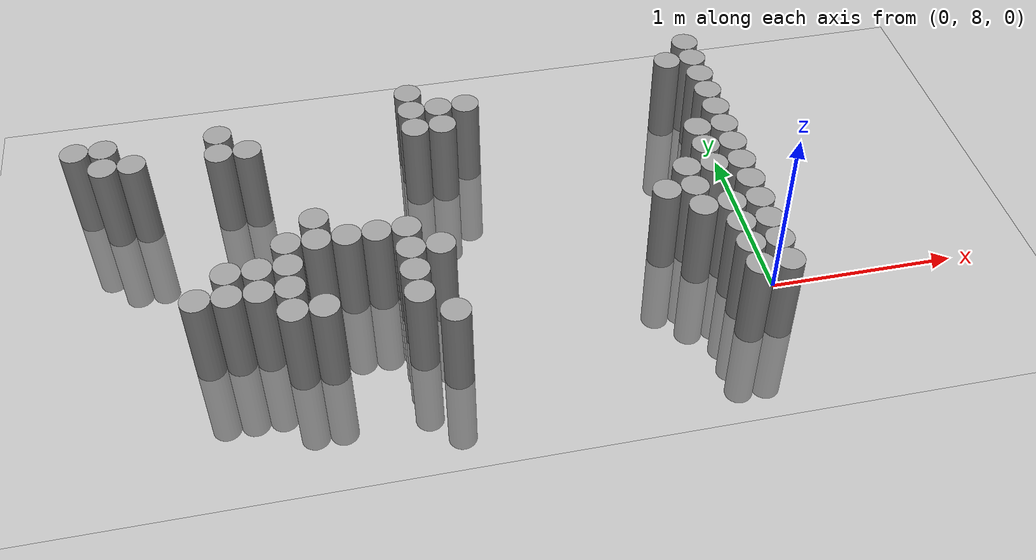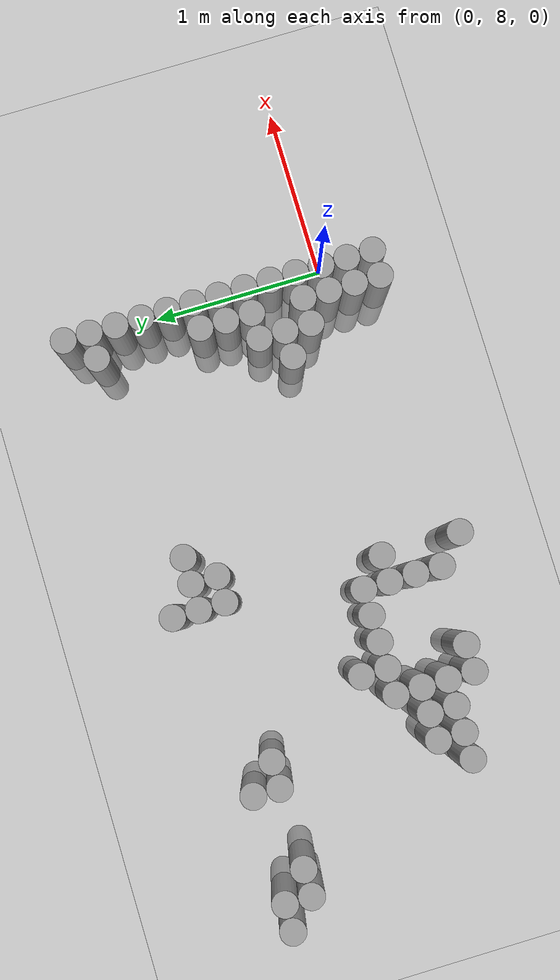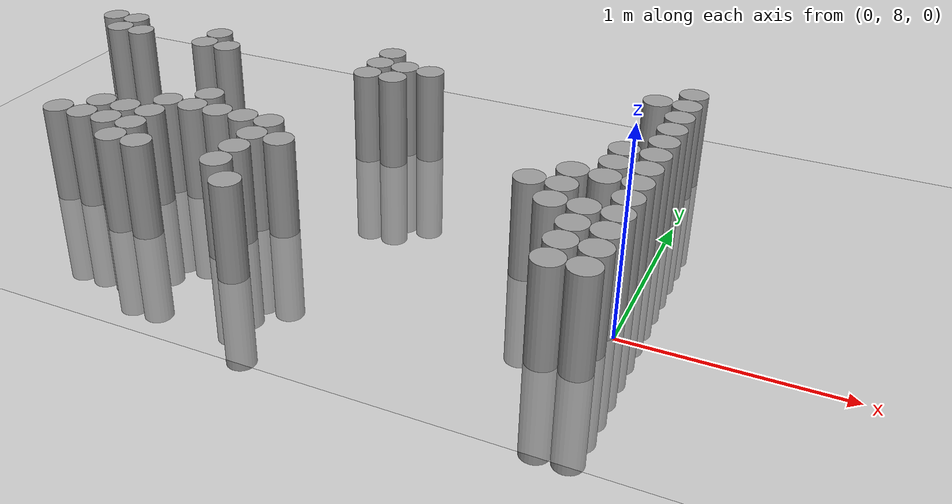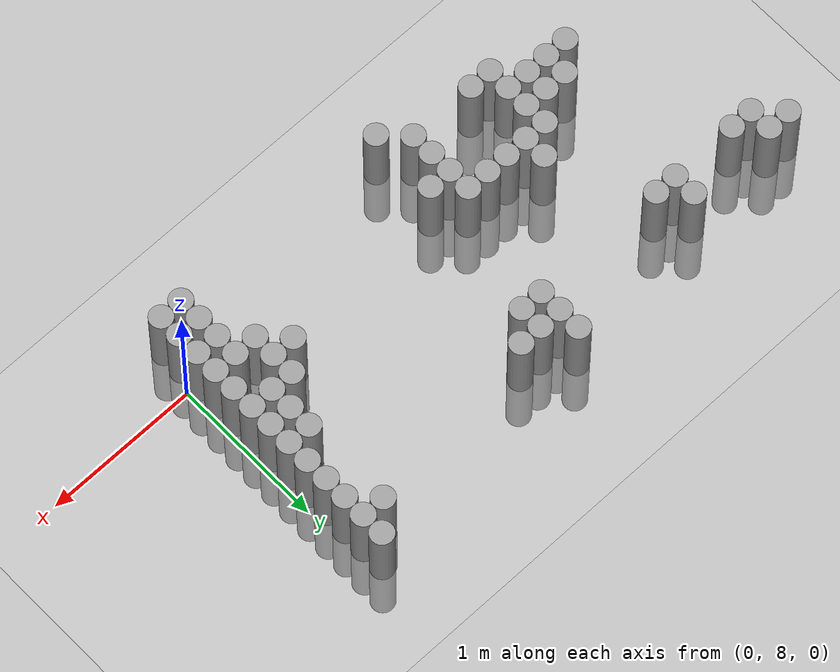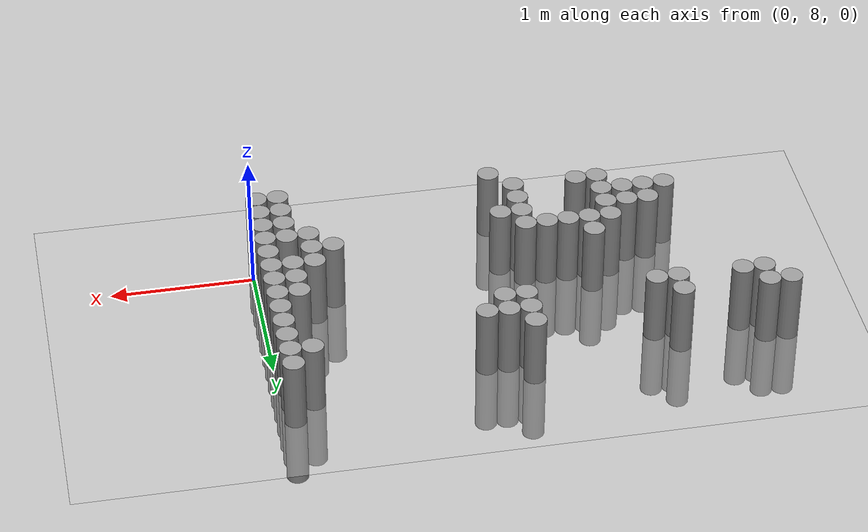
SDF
<sdf version="1.6">
 <world name="default">
  <model name="ground_plane">
   <static>1</static>
   <static>1</static>
   <link name="link">
    <collision name="collision">
     <geometry><plane><normal>0 0 1</normal><size>100 100</size></plane></geometry>
     <surface><friction><ode><mu>100</mu><mu2>50</mu2></ode></friction></surface>
    </collision>
    <visual name="visual">
     <cast_shadows>0</cast_shadows>
     <geometry><plane><normal>0 0 1</normal><size>100 100</size></plane></geometry>
     <material>
      <script><uri>file://media/materials/scripts/gazebo.material</uri><name>Gazebo/Grey</name></script>
     </material>
    </visual>
   </link>
  </model>
  <model name="unit_cylinder_165">
   <static>1</static>
   <pose>-3.525000 9.225000 0.000000 0.000000 0.000000 0.000000</pose>
   <link name="link">
    <inertial>
     <mass>1</mass>
     <inertia><ixx>0.145833</ixx><ixy>0</ixy><ixz>0</ixz><iyy>0.145833</iyy><iyz>0</iyz><izz>0.125</izz></inertia>
    </inertial>
    <collision name="collision">
     <geometry><cylinder><radius>0.075000</radius><length>1</length></cylinder></geometry>
    </collision>
    <visual name="visual">
     <geometry><cylinder><radius>0.075000</radius><length>1</length></cylinder></geometry>
     <material>
      <script><name>Gazebo/Grey</name><uri>file://media/materials/scripts/gazebo.material</uri></script>
     </material>
    </visual>
   </link>
  </model>
  <model name="unit_cylinder_166">
   <static>1</static>
   <pose>-3.375000 9.075000 0.000000 0.000000 0.000000 0.000000</pose>
   <link name="link">
    <inertial>
     <mass>1</mass>
     <inertia><ixx>0.145833</ixx><ixy>0</ixy><ixz>0</ixz><iyy>0.145833</iyy><iyz>0</iyz><izz>0.125</izz></inertia>
    </inertial>
    <collision name="collision">
     <geometry><cylinder><radius>0.075000</radius><length>1</length></cylinder></geometry>
    </collision>
    <visual name="visual">
     <geometry><cylinder><radius>0.075000</radius><length>1</length></cylinder></geometry>
     <material>
      <script><name>Gazebo/Grey</name><uri>file://media/materials/scripts/gazebo.material</uri></script>
     </material>
    </visual>
   </link>
  </model>
  <model name="unit_cylinder_167">
   <static>1</static>
   <pose>-3.375000 9.225000 0.000000 0.000000 0.000000 0.000000</pose>
   <link name="link">
    <inertial>
     <mass>1</mass>
     <inertia><ixx>0.145833</ixx><ixy>0</ixy><ixz>0</ixz><iyy>0.145833</iyy><iyz>0</iyz><izz>0.125</izz></inertia>
    </inertial>
    <collision name="collision">
     <geometry><cylinder><radius>0.075000</radius><length>1</length></cylinder></geometry>
    </collision>
    <visual name="visual">
     <geometry><cylinder><radius>0.075000</radius><length>1</length></cylinder></geometry>
     <material>
      <script><name>Gazebo/Grey</name><uri>file://media/materials/scripts/gazebo.material</uri></script>
     </material>
    </visual>
   </link>
  </model>
  <model name="unit_cylinder_168">
   <static>1</static>
   <pose>-3.225000 9.075000 0.000000 0.000000 0.000000 0.000000</pose>
   <link name="link">
    <inertial>
     <mass>1</mass>
     <inertia><ixx>0.145833</ixx><ixy>0</ixy><ixz>0</ixz><iyy>0.145833</iyy><iyz>0</iyz><izz>0.125</izz></inertia>
    </inertial>
    <collision name="collision">
     <geometry><cylinder><radius>0.075000</radius><length>1</length></cylinder></geometry>
    </collision>
    <visual name="visual">
     <geometry><cylinder><radius>0.075000</radius><length>1</length></cylinder></geometry>
     <material>
      <script><name>Gazebo/Grey</name><uri>file://media/materials/scripts/gazebo.material</uri></script>
     </material>
    </visual>
   </link>
  </model>
  <model name="unit_cylinder_172">
   <static>1</static>
   <pose>-2.925000 8.025000 0.000000 0.000000 0.000000 0.000000</pose>
   <link name="link">
    <inertial>
     <mass>1</mass>
     <inertia><ixx>0.145833</ixx><ixy>0</ixy><ixz>0</ixz><iyy>0.145833</iyy><iyz>0</iyz><izz>0.125</izz></inertia>
    </inertial>
    <collision name="collision">
     <geometry><cylinder><radius>0.075000</radius><length>1</length></cylinder></geometry>
    </collision>
    <visual name="visual">
     <geometry><cylinder><radius>0.075000</radius><length>1</length></cylinder></geometry>
     <material>
      <script><name>Gazebo/Grey</name><uri>file://media/materials/scripts/gazebo.material</uri></script>
     </material>
    </visual>
   </link>
  </model>
  <model name="unit_cylinder_175">
   <static>1</static>
   <pose>-2.775000 8.025000 0.000000 0.000000 0.000000 0.000000</pose>
   <link name="link">
    <inertial>
     <mass>1</mass>
     <inertia><ixx>0.145833</ixx><ixy>0</ixy><ixz>0</ixz><iyy>0.145833</iyy><iyz>0</iyz><izz>0.125</izz></inertia>
    </inertial>
    <collision name="collision">
     <geometry><cylinder><radius>0.075000</radius><length>1</length></cylinder></geometry>
    </collision>
    <visual name="visual">
     <geometry><cylinder><radius>0.075000</radius><length>1</length></cylinder></geometry>
     <material>
      <script><name>Gazebo/Grey</name><uri>file://media/materials/scripts/gazebo.material</uri></script>
     </material>
    </visual>
   </link>
  </model>
  <model name="unit_cylinder_176">
   <static>1</static>
   <pose>-2.775000 8.175000 0.000000 0.000000 0.000000 0.000000</pose>
   <link name="link">
    <inertial>
     <mass>1</mass>
     <inertia><ixx>0.145833</ixx><ixy>0</ixy><ixz>0</ixz><iyy>0.145833</iyy><iyz>0</iyz><izz>0.125</izz></inertia>
    </inertial>
    <collision name="collision">
     <geometry><cylinder><radius>0.075000</radius><length>1</length></cylinder></geometry>
    </collision>
    <visual name="visual">
     <geometry><cylinder><radius>0.075000</radius><length>1</length></cylinder></geometry>
     <material>
      <script><name>Gazebo/Grey</name><uri>file://media/materials/scripts/gazebo.material</uri></script>
     </material>
    </visual>
   </link>
  </model>
  <model name="unit_cylinder_177">
   <static>1</static>
   <pose>-2.775000 9.075000 0.000000 0.000000 0.000000 0.000000</pose>
   <link name="link">
    <inertial>
     <mass>1</mass>
     <inertia><ixx>0.145833</ixx><ixy>0</ixy><ixz>0</ixz><iyy>0.145833</iyy><iyz>0</iyz><izz>0.125</izz></inertia>
    </inertial>
    <collision name="collision">
     <geometry><cylinder><radius>0.075000</radius><length>1</length></cylinder></geometry>
    </collision>
    <visual name="visual">
     <geometry><cylinder><radius>0.075000</radius><length>1</length></cylinder></geometry>
     <material>
      <script><name>Gazebo/Grey</name><uri>file://media/materials/scripts/gazebo.material</uri></script>
     </material>
    </visual>
   </link>
  </model>
  <model name="unit_cylinder_178">
   <static>1</static>
   <pose>-2.775000 9.225000 0.000000 0.000000 0.000000 0.000000</pose>
   <link name="link">
    <inertial>
     <mass>1</mass>
     <inertia><ixx>0.145833</ixx><ixy>0</ixy><ixz>0</ixz><iyy>0.145833</iyy><iyz>0</iyz><izz>0.125</izz></inertia>
    </inertial>
    <collision name="collision">
     <geometry><cylinder><radius>0.075000</radius><length>1</length></cylinder></geometry>
    </collision>
    <visual name="visual">
     <geometry><cylinder><radius>0.075000</radius><length>1</length></cylinder></geometry>
     <material>
      <script><name>Gazebo/Grey</name><uri>file://media/materials/scripts/gazebo.material</uri></script>
     </material>
    </visual>
   </link>
  </model>
  <model name="unit_cylinder_180">
   <static>1</static>
   <pose>-2.625000 8.025000 0.000000 0.000000 0.000000 0.000000</pose>
   <link name="link">
    <inertial>
     <mass>1</mass>
     <inertia><ixx>0.145833</ixx><ixy>0</ixy><ixz>0</ixz><iyy>0.145833</iyy><iyz>0</iyz><izz>0.125</izz></inertia>
    </inertial>
    <collision name="collision">
     <geometry><cylinder><radius>0.075000</radius><length>1</length></cylinder></geometry>
    </collision>
    <visual name="visual">
     <geometry><cylinder><radius>0.075000</radius><length>1</length></cylinder></geometry>
     <material>
      <script><name>Gazebo/Grey</name><uri>file://media/materials/scripts/gazebo.material</uri></script>
     </material>
    </visual>
   </link>
  </model>
  <model name="unit_cylinder_181">
   <static>1</static>
   <pose>-2.625000 8.175000 0.000000 0.000000 0.000000 0.000000</pose>
   <link name="link">
    <inertial>
     <mass>1</mass>
     <inertia><ixx>0.145833</ixx><ixy>0</ixy><ixz>0</ixz><iyy>0.145833</iyy><iyz>0</iyz><izz>0.125</izz></inertia>
    </inertial>
    <collision name="collision">
     <geometry><cylinder><radius>0.075000</radius><length>1</length></cylinder></geometry>
    </collision>
    <visual name="visual">
     <geometry><cylinder><radius>0.075000</radius><length>1</length></cylinder></geometry>
     <material>
      <script><name>Gazebo/Grey</name><uri>file://media/materials/scripts/gazebo.material</uri></script>
     </material>
    </visual>
   </link>
  </model>
  <model name="unit_cylinder_182">
   <static>1</static>
   <pose>-2.625000 9.075000 0.000000 0.000000 0.000000 0.000000</pose>
   <link name="link">
    <inertial>
     <mass>1</mass>
     <inertia><ixx>0.145833</ixx><ixy>0</ixy><ixz>0</ixz><iyy>0.145833</iyy><iyz>0</iyz><izz>0.125</izz></inertia>
    </inertial>
    <collision name="collision">
     <geometry><cylinder><radius>0.075000</radius><length>1</length></cylinder></geometry>
    </collision>
    <visual name="visual">
     <geometry><cylinder><radius>0.075000</radius><length>1</length></cylinder></geometry>
     <material>
      <script><name>Gazebo/Grey</name><uri>file://media/materials/scripts/gazebo.material</uri></script>
     </material>
    </visual>
   </link>
  </model>
  <model name="unit_cylinder_185">
   <static>1</static>
   <pose>-2.475000 7.875000 0.000000 0.000000 0.000000 0.000000</pose>
   <link name="link">
    <inertial>
     <mass>1</mass>
     <inertia><ixx>0.145833</ixx><ixy>0</ixy><ixz>0</ixz><iyy>0.145833</iyy><iyz>0</iyz><izz>0.125</izz></inertia>
    </inertial>
    <collision name="collision">
     <geometry><cylinder><radius>0.075000</radius><length>1</length></cylinder></geometry>
    </collision>
    <visual name="visual">
     <geometry><cylinder><radius>0.075000</radius><length>1</length></cylinder></geometry>
     <material>
      <script><name>Gazebo/Grey</name><uri>file://media/materials/scripts/gazebo.material</uri></script>
     </material>
    </visual>
   </link>
  </model>
  <model name="unit_cylinder_186">
   <static>1</static>
   <pose>-2.475000 8.025000 0.000000 0.000000 0.000000 0.000000</pose>
   <link name="link">
    <inertial>
     <mass>1</mass>
     <inertia><ixx>0.145833</ixx><ixy>0</ixy><ixz>0</ixz><iyy>0.145833</iyy><iyz>0</iyz><izz>0.125</izz></inertia>
    </inertial>
    <collision name="collision">
     <geometry><cylinder><radius>0.075000</radius><length>1</length></cylinder></geometry>
    </collision>
    <visual name="visual">
     <geometry><cylinder><radius>0.075000</radius><length>1</length></cylinder></geometry>
     <material>
      <script><name>Gazebo/Grey</name><uri>file://media/materials/scripts/gazebo.material</uri></script>
     </material>
    </visual>
   </link>
  </model>
  <model name="unit_cylinder_187">
   <static>1</static>
   <pose>-2.475000 8.175000 0.000000 0.000000 0.000000 0.000000</pose>
   <link name="link">
    <inertial>
     <mass>1</mass>
     <inertia><ixx>0.145833</ixx><ixy>0</ixy><ixz>0</ixz><iyy>0.145833</iyy><iyz>0</iyz><izz>0.125</izz></inertia>
    </inertial>
    <collision name="collision">
     <geometry><cylinder><radius>0.075000</radius><length>1</length></cylinder></geometry>
    </collision>
    <visual name="visual">
     <geometry><cylinder><radius>0.075000</radius><length>1</length></cylinder></geometry>
     <material>
      <script><name>Gazebo/Grey</name><uri>file://media/materials/scripts/gazebo.material</uri></script>
     </material>
    </visual>
   </link>
  </model>
  <model name="unit_cylinder_188">
   <static>1</static>
   <pose>-2.475000 8.325000 0.000000 0.000000 0.000000 0.000000</pose>
   <link name="link">
    <inertial>
     <mass>1</mass>
     <inertia><ixx>0.145833</ixx><ixy>0</ixy><ixz>0</ixz><iyy>0.145833</iyy><iyz>0</iyz><izz>0.125</izz></inertia>
    </inertial>
    <collision name="collision">
     <geometry><cylinder><radius>0.075000</radius><length>1</length></cylinder></geometry>
    </collision>
    <visual name="visual">
     <geometry><cylinder><radius>0.075000</radius><length>1</length></cylinder></geometry>
     <material>
      <script><name>Gazebo/Grey</name><uri>file://media/materials/scripts/gazebo.material</uri></script>
     </material>
    </visual>
   </link>
  </model>
  <model name="unit_cylinder_193">
   <static>1</static>
   <pose>-2.325000 7.875000 0.000000 0.000000 0.000000 0.000000</pose>
   <link name="link">
    <inertial>
     <mass>1</mass>
     <inertia><ixx>0.145833</ixx><ixy>0</ixy><ixz>0</ixz><iyy>0.145833</iyy><iyz>0</iyz><izz>0.125</izz></inertia>
    </inertial>
    <collision name="collision">
     <geometry><cylinder><radius>0.075000</radius><length>1</length></cylinder></geometry>
    </collision>
    <visual name="visual">
     <geometry><cylinder><radius>0.075000</radius><length>1</length></cylinder></geometry>
     <material>
      <script><name>Gazebo/Grey</name><uri>file://media/materials/scripts/gazebo.material</uri></script>
     </material>
    </visual>
   </link>
  </model>
  <model name="unit_cylinder_194">
   <static>1</static>
   <pose>-2.325000 8.325000 0.000000 0.000000 0.000000 0.000000</pose>
   <link name="link">
    <inertial>
     <mass>1</mass>
     <inertia><ixx>0.145833</ixx><ixy>0</ixy><ixz>0</ixz><iyy>0.145833</iyy><iyz>0</iyz><izz>0.125</izz></inertia>
    </inertial>
    <collision name="collision">
     <geometry><cylinder><radius>0.075000</radius><length>1</length></cylinder></geometry>
    </collision>
    <visual name="visual">
     <geometry><cylinder><radius>0.075000</radius><length>1</length></cylinder></geometry>
     <material>
      <script><name>Gazebo/Grey</name><uri>file://media/materials/scripts/gazebo.material</uri></script>
     </material>
    </visual>
   </link>
  </model>
  <model name="unit_cylinder_195">
   <static>1</static>
   <pose>-2.325000 8.475000 0.000000 0.000000 0.000000 0.000000</pose>
   <link name="link">
    <inertial>
     <mass>1</mass>
     <inertia><ixx>0.145833</ixx><ixy>0</ixy><ixz>0</ixz><iyy>0.145833</iyy><iyz>0</iyz><izz>0.125</izz></inertia>
    </inertial>
    <collision name="collision">
     <geometry><cylinder><radius>0.075000</radius><length>1</length></cylinder></geometry>
    </collision>
    <visual name="visual">
     <geometry><cylinder><radius>0.075000</radius><length>1</length></cylinder></geometry>
     <material>
      <script><name>Gazebo/Grey</name><uri>file://media/materials/scripts/gazebo.material</uri></script>
     </material>
    </visual>
   </link>
  </model>
  <model name="unit_cylinder_202">
   <static>1</static>
   <pose>-2.175000 8.325000 0.000000 0.000000 0.000000 0.000000</pose>
   <link name="link">
    <inertial>
     <mass>1</mass>
     <inertia><ixx>0.145833</ixx><ixy>0</ixy><ixz>0</ixz><iyy>0.145833</iyy><iyz>0</iyz><izz>0.125</izz></inertia>
    </inertial>
    <collision name="collision">
     <geometry><cylinder><radius>0.075000</radius><length>1</length></cylinder></geometry>
    </collision>
    <visual name="visual">
     <geometry><cylinder><radius>0.075000</radius><length>1</length></cylinder></geometry>
     <material>
      <script><name>Gazebo/Grey</name><uri>file://media/materials/scripts/gazebo.material</uri></script>
     </material>
    </visual>
   </link>
  </model>
  <model name="unit_cylinder_208">
   <static>1</static>
   <pose>-2.025000 8.325000 0.000000 0.000000 0.000000 0.000000</pose>
   <link name="link">
    <inertial>
     <mass>1</mass>
     <inertia><ixx>0.145833</ixx><ixy>0</ixy><ixz>0</ixz><iyy>0.145833</iyy><iyz>0</iyz><izz>0.125</izz></inertia>
    </inertial>
    <collision name="collision">
     <geometry><cylinder><radius>0.075000</radius><length>1</length></cylinder></geometry>
    </collision>
    <visual name="visual">
     <geometry><cylinder><radius>0.075000</radius><length>1</length></cylinder></geometry>
     <material>
      <script><name>Gazebo/Grey</name><uri>file://media/materials/scripts/gazebo.material</uri></script>
     </material>
    </visual>
   </link>
  </model>
  <model name="unit_cylinder_213">
   <static>1</static>
   <pose>-1.875000 7.875000 0.000000 0.000000 0.000000 0.000000</pose>
   <link name="link">
    <inertial>
     <mass>1</mass>
     <inertia><ixx>0.145833</ixx><ixy>0</ixy><ixz>0</ixz><iyy>0.145833</iyy><iyz>0</iyz><izz>0.125</izz></inertia>
    </inertial>
    <collision name="collision">
     <geometry><cylinder><radius>0.075000</radius><length>1</length></cylinder></geometry>
    </collision>
    <visual name="visual">
     <geometry><cylinder><radius>0.075000</radius><length>1</length></cylinder></geometry>
     <material>
      <script><name>Gazebo/Grey</name><uri>file://media/materials/scripts/gazebo.material</uri></script>
     </material>
    </visual>
   </link>
  </model>
  <model name="unit_cylinder_214">
   <static>1</static>
   <pose>-1.875000 8.025000 0.000000 0.000000 0.000000 0.000000</pose>
   <link name="link">
    <inertial>
     <mass>1</mass>
     <inertia><ixx>0.145833</ixx><ixy>0</ixy><ixz>0</ixz><iyy>0.145833</iyy><iyz>0</iyz><izz>0.125</izz></inertia>
    </inertial>
    <collision name="collision">
     <geometry><cylinder><radius>0.075000</radius><length>1</length></cylinder></geometry>
    </collision>
    <visual name="visual">
     <geometry><cylinder><radius>0.075000</radius><length>1</length></cylinder></geometry>
     <material>
      <script><name>Gazebo/Grey</name><uri>file://media/materials/scripts/gazebo.material</uri></script>
     </material>
    </visual>
   </link>
  </model>
  <model name="unit_cylinder_215">
   <static>1</static>
   <pose>-1.875000 8.175000 0.000000 0.000000 0.000000 0.000000</pose>
   <link name="link">
    <inertial>
     <mass>1</mass>
     <inertia><ixx>0.145833</ixx><ixy>0</ixy><ixz>0</ixz><iyy>0.145833</iyy><iyz>0</iyz><izz>0.125</izz></inertia>
    </inertial>
    <collision name="collision">
     <geometry><cylinder><radius>0.075000</radius><length>1</length></cylinder></geometry>
    </collision>
    <visual name="visual">
     <geometry><cylinder><radius>0.075000</radius><length>1</length></cylinder></geometry>
     <material>
      <script><name>Gazebo/Grey</name><uri>file://media/materials/scripts/gazebo.material</uri></script>
     </material>
    </visual>
   </link>
  </model>
  <model name="unit_cylinder_216">
   <static>1</static>
   <pose>-1.875000 8.325000 0.000000 0.000000 0.000000 0.000000</pose>
   <link name="link">
    <inertial>
     <mass>1</mass>
     <inertia><ixx>0.145833</ixx><ixy>0</ixy><ixz>0</ixz><iyy>0.145833</iyy><iyz>0</iyz><izz>0.125</izz></inertia>
    </inertial>
    <collision name="collision">
     <geometry><cylinder><radius>0.075000</radius><length>1</length></cylinder></geometry>
    </collision>
    <visual name="visual">
     <geometry><cylinder><radius>0.075000</radius><length>1</length></cylinder></geometry>
     <material>
      <script><name>Gazebo/Grey</name><uri>file://media/materials/scripts/gazebo.material</uri></script>
     </material>
    </visual>
   </link>
  </model>
  <model name="unit_cylinder_218">
   <static>1</static>
   <pose>-1.725000 7.725000 0.000000 0.000000 0.000000 0.000000</pose>
   <link name="link">
    <inertial>
     <mass>1</mass>
     <inertia><ixx>0.145833</ixx><ixy>0</ixy><ixz>0</ixz><iyy>0.145833</iyy><iyz>0</iyz><izz>0.125</izz></inertia>
    </inertial>
    <collision name="collision">
     <geometry><cylinder><radius>0.075000</radius><length>1</length></cylinder></geometry>
    </collision>
    <visual name="visual">
     <geometry><cylinder><radius>0.075000</radius><length>1</length></cylinder></geometry>
     <material>
      <script><name>Gazebo/Grey</name><uri>file://media/materials/scripts/gazebo.material</uri></script>
     </material>
    </visual>
   </link>
  </model>
  <model name="unit_cylinder_219">
   <static>1</static>
   <pose>-1.725000 8.175000 0.000000 0.000000 0.000000 0.000000</pose>
   <link name="link">
    <inertial>
     <mass>1</mass>
     <inertia><ixx>0.145833</ixx><ixy>0</ixy><ixz>0</ixz><iyy>0.145833</iyy><iyz>0</iyz><izz>0.125</izz></inertia>
    </inertial>
    <collision name="collision">
     <geometry><cylinder><radius>0.075000</radius><length>1</length></cylinder></geometry>
    </collision>
    <visual name="visual">
     <geometry><cylinder><radius>0.075000</radius><length>1</length></cylinder></geometry>
     <material>
      <script><name>Gazebo/Grey</name><uri>file://media/materials/scripts/gazebo.material</uri></script>
     </material>
    </visual>
   </link>
  </model>
  <model name="unit_cylinder_220">
   <static>1</static>
   <pose>-1.725000 9.075000 0.000000 0.000000 0.000000 0.000000</pose>
   <link name="link">
    <inertial>
     <mass>1</mass>
     <inertia><ixx>0.145833</ixx><ixy>0</ixy><ixz>0</ixz><iyy>0.145833</iyy><iyz>0</iyz><izz>0.125</izz></inertia>
    </inertial>
    <collision name="collision">
     <geometry><cylinder><radius>0.075000</radius><length>1</length></cylinder></geometry>
    </collision>
    <visual name="visual">
     <geometry><cylinder><radius>0.075000</radius><length>1</length></cylinder></geometry>
     <material>
      <script><name>Gazebo/Grey</name><uri>file://media/materials/scripts/gazebo.material</uri></script>
     </material>
    </visual>
   </link>
  </model>
  <model name="unit_cylinder_221">
   <static>1</static>
   <pose>-1.725000 9.225000 0.000000 0.000000 0.000000 0.000000</pose>
   <link name="link">
    <inertial>
     <mass>1</mass>
     <inertia><ixx>0.145833</ixx><ixy>0</ixy><ixz>0</ixz><iyy>0.145833</iyy><iyz>0</iyz><izz>0.125</izz></inertia>
    </inertial>
    <collision name="collision">
     <geometry><cylinder><radius>0.075000</radius><length>1</length></cylinder></geometry>
    </collision>
    <visual name="visual">
     <geometry><cylinder><radius>0.075000</radius><length>1</length></cylinder></geometry>
     <material>
      <script><name>Gazebo/Grey</name><uri>file://media/materials/scripts/gazebo.material</uri></script>
     </material>
    </visual>
   </link>
  </model>
  <model name="unit_cylinder_222">
   <static>1</static>
   <pose>-1.725000 9.375000 0.000000 0.000000 0.000000 0.000000</pose>
   <link name="link">
    <inertial>
     <mass>1</mass>
     <inertia><ixx>0.145833</ixx><ixy>0</ixy><ixz>0</ixz><iyy>0.145833</iyy><iyz>0</iyz><izz>0.125</izz></inertia>
    </inertial>
    <collision name="collision">
     <geometry><cylinder><radius>0.075000</radius><length>1</length></cylinder></geometry>
    </collision>
    <visual name="visual">
     <geometry><cylinder><radius>0.075000</radius><length>1</length></cylinder></geometry>
     <material>
      <script><name>Gazebo/Grey</name><uri>file://media/materials/scripts/gazebo.material</uri></script>
     </material>
    </visual>
   </link>
  </model>
  <model name="unit_cylinder_225">
   <static>1</static>
   <pose>-1.575000 9.075000 0.000000 0.000000 0.000000 0.000000</pose>
   <link name="link">
    <inertial>
     <mass>1</mass>
     <inertia><ixx>0.145833</ixx><ixy>0</ixy><ixz>0</ixz><iyy>0.145833</iyy><iyz>0</iyz><izz>0.125</izz></inertia>
    </inertial>
    <collision name="collision">
     <geometry><cylinder><radius>0.075000</radius><length>1</length></cylinder></geometry>
    </collision>
    <visual name="visual">
     <geometry><cylinder><radius>0.075000</radius><length>1</length></cylinder></geometry>
     <material>
      <script><name>Gazebo/Grey</name><uri>file://media/materials/scripts/gazebo.material</uri></script>
     </material>
    </visual>
   </link>
  </model>
  <model name="unit_cylinder_226">
   <static>1</static>
   <pose>-1.575000 9.225000 0.000000 0.000000 0.000000 0.000000</pose>
   <link name="link">
    <inertial>
     <mass>1</mass>
     <inertia><ixx>0.145833</ixx><ixy>0</ixy><ixz>0</ixz><iyy>0.145833</iyy><iyz>0</iyz><izz>0.125</izz></inertia>
    </inertial>
    <collision name="collision">
     <geometry><cylinder><radius>0.075000</radius><length>1</length></cylinder></geometry>
    </collision>
    <visual name="visual">
     <geometry><cylinder><radius>0.075000</radius><length>1</length></cylinder></geometry>
     <material>
      <script><name>Gazebo/Grey</name><uri>file://media/materials/scripts/gazebo.material</uri></script>
     </material>
    </visual>
   </link>
  </model>
  <model name="unit_cylinder_229">
   <static>1</static>
   <pose>-1.425000 9.225000 0.000000 0.000000 0.000000 0.000000</pose>
   <link name="link">
    <inertial>
     <mass>1</mass>
     <inertia><ixx>0.145833</ixx><ixy>0</ixy><ixz>0</ixz><iyy>0.145833</iyy><iyz>0</iyz><izz>0.125</izz></inertia>
    </inertial>
    <collision name="collision">
     <geometry><cylinder><radius>0.075000</radius><length>1</length></cylinder></geometry>
    </collision>
    <visual name="visual">
     <geometry><cylinder><radius>0.075000</radius><length>1</length></cylinder></geometry>
     <material>
      <script><name>Gazebo/Grey</name><uri>file://media/materials/scripts/gazebo.material</uri></script>
     </material>
    </visual>
   </link>
  </model>
  <model name="unit_cylinder_237">
   <static>1</static>
   <pose>-0.525000 8.325000 0.000000 0.000000 0.000000 0.000000</pose>
   <link name="link">
    <inertial>
     <mass>1</mass>
     <inertia><ixx>0.145833</ixx><ixy>0</ixy><ixz>0</ixz><iyy>0.145833</iyy><iyz>0</iyz><izz>0.125</izz></inertia>
    </inertial>
    <collision name="collision">
     <geometry><cylinder><radius>0.075000</radius><length>1</length></cylinder></geometry>
    </collision>
    <visual name="visual">
     <geometry><cylinder><radius>0.075000</radius><length>1</length></cylinder></geometry>
     <material>
      <script><name>Gazebo/Grey</name><uri>file://media/materials/scripts/gazebo.material</uri></script>
     </material>
    </visual>
   </link>
  </model>
  <model name="unit_cylinder_238">
   <static>1</static>
   <pose>-0.375000 8.175000 0.000000 0.000000 0.000000 0.000000</pose>
   <link name="link">
    <inertial>
     <mass>1</mass>
     <inertia><ixx>0.145833</ixx><ixy>0</ixy><ixz>0</ixz><iyy>0.145833</iyy><iyz>0</iyz><izz>0.125</izz></inertia>
    </inertial>
    <collision name="collision">
     <geometry><cylinder><radius>0.075000</radius><length>1</length></cylinder></geometry>
    </collision>
    <visual name="visual">
     <geometry><cylinder><radius>0.075000</radius><length>1</length></cylinder></geometry>
     <material>
      <script><name>Gazebo/Grey</name><uri>file://media/materials/scripts/gazebo.material</uri></script>
     </material>
    </visual>
   </link>
  </model>
  <model name="unit_cylinder_239">
   <static>1</static>
   <pose>-0.375000 8.325000 0.000000 0.000000 0.000000 0.000000</pose>
   <link name="link">
    <inertial>
     <mass>1</mass>
     <inertia><ixx>0.145833</ixx><ixy>0</ixy><ixz>0</ixz><iyy>0.145833</iyy><iyz>0</iyz><izz>0.125</izz></inertia>
    </inertial>
    <collision name="collision">
     <geometry><cylinder><radius>0.075000</radius><length>1</length></cylinder></geometry>
    </collision>
    <visual name="visual">
     <geometry><cylinder><radius>0.075000</radius><length>1</length></cylinder></geometry>
     <material>
      <script><name>Gazebo/Grey</name><uri>file://media/materials/scripts/gazebo.material</uri></script>
     </material>
    </visual>
   </link>
  </model>
  <model name="unit_cylinder_240">
   <static>1</static>
   <pose>-0.375000 8.475000 0.000000 0.000000 0.000000 0.000000</pose>
   <link name="link">
    <inertial>
     <mass>1</mass>
     <inertia><ixx>0.145833</ixx><ixy>0</ixy><ixz>0</ixz><iyy>0.145833</iyy><iyz>0</iyz><izz>0.125</izz></inertia>
    </inertial>
    <collision name="collision">
     <geometry><cylinder><radius>0.075000</radius><length>1</length></cylinder></geometry>
    </collision>
    <visual name="visual">
     <geometry><cylinder><radius>0.075000</radius><length>1</length></cylinder></geometry>
     <material>
      <script><name>Gazebo/Grey</name><uri>file://media/materials/scripts/gazebo.material</uri></script>
     </material>
    </visual>
   </link>
  </model>
  <model name="unit_cylinder_249">
   <static>1</static>
   <pose>-0.225000 7.725000 0.000000 0.000000 0.000000 0.000000</pose>
   <link name="link">
    <inertial>
     <mass>1</mass>
     <inertia><ixx>0.145833</ixx><ixy>0</ixy><ixz>0</ixz><iyy>0.145833</iyy><iyz>0</iyz><izz>0.125</izz></inertia>
    </inertial>
    <collision name="collision">
     <geometry><cylinder><radius>0.075000</radius><length>1</length></cylinder></geometry>
    </collision>
    <visual name="visual">
     <geometry><cylinder><radius>0.075000</radius><length>1</length></cylinder></geometry>
     <material>
      <script><name>Gazebo/Grey</name><uri>file://media/materials/scripts/gazebo.material</uri></script>
     </material>
    </visual>
   </link>
  </model>
  <model name="unit_cylinder_250">
   <static>1</static>
   <pose>-0.225000 7.875000 0.000000 0.000000 0.000000 0.000000</pose>
   <link name="link">
    <inertial>
     <mass>1</mass>
     <inertia><ixx>0.145833</ixx><ixy>0</ixy><ixz>0</ixz><iyy>0.145833</iyy><iyz>0</iyz><izz>0.125</izz></inertia>
    </inertial>
    <collision name="collision">
     <geometry><cylinder><radius>0.075000</radius><length>1</length></cylinder></geometry>
    </collision>
    <visual name="visual">
     <geometry><cylinder><radius>0.075000</radius><length>1</length></cylinder></geometry>
     <material>
      <script><name>Gazebo/Grey</name><uri>file://media/materials/scripts/gazebo.material</uri></script>
     </material>
    </visual>
   </link>
  </model>
  <model name="unit_cylinder_251">
   <static>1</static>
   <pose>-0.225000 8.025000 0.000000 0.000000 0.000000 0.000000</pose>
   <link name="link">
    <inertial>
     <mass>1</mass>
     <inertia><ixx>0.145833</ixx><ixy>0</ixy><ixz>0</ixz><iyy>0.145833</iyy><iyz>0</iyz><izz>0.125</izz></inertia>
    </inertial>
    <collision name="collision">
     <geometry><cylinder><radius>0.075000</radius><length>1</length></cylinder></geometry>
    </collision>
    <visual name="visual">
     <geometry><cylinder><radius>0.075000</radius><length>1</length></cylinder></geometry>
     <material>
      <script><name>Gazebo/Grey</name><uri>file://media/materials/scripts/gazebo.material</uri></script>
     </material>
    </visual>
   </link>
  </model>
  <model name="unit_cylinder_252">
   <static>1</static>
   <pose>-0.225000 8.175000 0.000000 0.000000 0.000000 0.000000</pose>
   <link name="link">
    <inertial>
     <mass>1</mass>
     <inertia><ixx>0.145833</ixx><ixy>0</ixy><ixz>0</ixz><iyy>0.145833</iyy><iyz>0</iyz><izz>0.125</izz></inertia>
    </inertial>
    <collision name="collision">
     <geometry><cylinder><radius>0.075000</radius><length>1</length></cylinder></geometry>
    </collision>
    <visual name="visual">
     <geometry><cylinder><radius>0.075000</radius><length>1</length></cylinder></geometry>
     <material>
      <script><name>Gazebo/Grey</name><uri>file://media/materials/scripts/gazebo.material</uri></script>
     </material>
    </visual>
   </link>
  </model>
  <model name="unit_cylinder_253">
   <static>1</static>
   <pose>-0.225000 8.475000 0.000000 0.000000 0.000000 0.000000</pose>
   <link name="link">
    <inertial>
     <mass>1</mass>
     <inertia><ixx>0.145833</ixx><ixy>0</ixy><ixz>0</ixz><iyy>0.145833</iyy><iyz>0</iyz><izz>0.125</izz></inertia>
    </inertial>
    <collision name="collision">
     <geometry><cylinder><radius>0.075000</radius><length>1</length></cylinder></geometry>
    </collision>
    <visual name="visual">
     <geometry><cylinder><radius>0.075000</radius><length>1</length></cylinder></geometry>
     <material>
      <script><name>Gazebo/Grey</name><uri>file://media/materials/scripts/gazebo.material</uri></script>
     </material>
    </visual>
   </link>
  </model>
  <model name="unit_cylinder_254">
   <static>1</static>
   <pose>-0.225000 8.625000 0.000000 0.000000 0.000000 0.000000</pose>
   <link name="link">
    <inertial>
     <mass>1</mass>
     <inertia><ixx>0.145833</ixx><ixy>0</ixy><ixz>0</ixz><iyy>0.145833</iyy><iyz>0</iyz><izz>0.125</izz></inertia>
    </inertial>
    <collision name="collision">
     <geometry><cylinder><radius>0.075000</radius><length>1</length></cylinder></geometry>
    </collision>
    <visual name="visual">
     <geometry><cylinder><radius>0.075000</radius><length>1</length></cylinder></geometry>
     <material>
      <script><name>Gazebo/Grey</name><uri>file://media/materials/scripts/gazebo.material</uri></script>
     </material>
    </visual>
   </link>
  </model>
  <model name="unit_cylinder_255">
   <static>1</static>
   <pose>-0.225000 8.775000 0.000000 0.000000 0.000000 0.000000</pose>
   <link name="link">
    <inertial>
     <mass>1</mass>
     <inertia><ixx>0.145833</ixx><ixy>0</ixy><ixz>0</ixz><iyy>0.145833</iyy><iyz>0</iyz><izz>0.125</izz></inertia>
    </inertial>
    <collision name="collision">
     <geometry><cylinder><radius>0.075000</radius><length>1</length></cylinder></geometry>
    </collision>
    <visual name="visual">
     <geometry><cylinder><radius>0.075000</radius><length>1</length></cylinder></geometry>
     <material>
      <script><name>Gazebo/Grey</name><uri>file://media/materials/scripts/gazebo.material</uri></script>
     </material>
    </visual>
   </link>
  </model>
  <model name="unit_cylinder_256">
   <static>1</static>
   <pose>-0.225000 9.375000 0.000000 0.000000 0.000000 0.000000</pose>
   <link name="link">
    <inertial>
     <mass>1</mass>
     <inertia><ixx>0.145833</ixx><ixy>0</ixy><ixz>0</ixz><iyy>0.145833</iyy><iyz>0</iyz><izz>0.125</izz></inertia>
    </inertial>
    <collision name="collision">
     <geometry><cylinder><radius>0.075000</radius><length>1</length></cylinder></geometry>
    </collision>
    <visual name="visual">
     <geometry><cylinder><radius>0.075000</radius><length>1</length></cylinder></geometry>
     <material>
      <script><name>Gazebo/Grey</name><uri>file://media/materials/scripts/gazebo.material</uri></script>
     </material>
    </visual>
   </link>
  </model>
  <model name="unit_cylinder_274">
   <static>1</static>
   <pose>-0.075000 7.725000 0.000000 0.000000 0.000000 0.000000</pose>
   <link name="link">
    <inertial>
     <mass>1</mass>
     <inertia><ixx>0.145833</ixx><ixy>0</ixy><ixz>0</ixz><iyy>0.145833</iyy><iyz>0</iyz><izz>0.125</izz></inertia>
    </inertial>
    <collision name="collision">
     <geometry><cylinder><radius>0.075000</radius><length>1</length></cylinder></geometry>
    </collision>
    <visual name="visual">
     <geometry><cylinder><radius>0.075000</radius><length>1</length></cylinder></geometry>
     <material>
      <script><name>Gazebo/Grey</name><uri>file://media/materials/scripts/gazebo.material</uri></script>
     </material>
    </visual>
   </link>
  </model>
  <model name="unit_cylinder_275">
   <static>1</static>
   <pose>-0.075000 7.875000 0.000000 0.000000 0.000000 0.000000</pose>
   <link name="link">
    <inertial>
     <mass>1</mass>
     <inertia><ixx>0.145833</ixx><ixy>0</ixy><ixz>0</ixz><iyy>0.145833</iyy><iyz>0</iyz><izz>0.125</izz></inertia>
    </inertial>
    <collision name="collision">
     <geometry><cylinder><radius>0.075000</radius><length>1</length></cylinder></geometry>
    </collision>
    <visual name="visual">
     <geometry><cylinder><radius>0.075000</radius><length>1</length></cylinder></geometry>
     <material>
      <script><name>Gazebo/Grey</name><uri>file://media/materials/scripts/gazebo.material</uri></script>
     </material>
    </visual>
   </link>
  </model>
  <model name="unit_cylinder_276">
   <static>1</static>
   <pose>-0.075000 8.025000 0.000000 0.000000 0.000000 0.000000</pose>
   <link name="link">
    <inertial>
     <mass>1</mass>
     <inertia><ixx>0.145833</ixx><ixy>0</ixy><ixz>0</ixz><iyy>0.145833</iyy><iyz>0</iyz><izz>0.125</izz></inertia>
    </inertial>
    <collision name="collision">
     <geometry><cylinder><radius>0.075000</radius><length>1</length></cylinder></geometry>
    </collision>
    <visual name="visual">
     <geometry><cylinder><radius>0.075000</radius><length>1</length></cylinder></geometry>
     <material>
      <script><name>Gazebo/Grey</name><uri>file://media/materials/scripts/gazebo.material</uri></script>
     </material>
    </visual>
   </link>
  </model>
  <model name="unit_cylinder_277">
   <static>1</static>
   <pose>-0.075000 8.175000 0.000000 0.000000 0.000000 0.000000</pose>
   <link name="link">
    <inertial>
     <mass>1</mass>
     <inertia><ixx>0.145833</ixx><ixy>0</ixy><ixz>0</ixz><iyy>0.145833</iyy><iyz>0</iyz><izz>0.125</izz></inertia>
    </inertial>
    <collision name="collision">
     <geometry><cylinder><radius>0.075000</radius><length>1</length></cylinder></geometry>
    </collision>
    <visual name="visual">
     <geometry><cylinder><radius>0.075000</radius><length>1</length></cylinder></geometry>
     <material>
      <script><name>Gazebo/Grey</name><uri>file://media/materials/scripts/gazebo.material</uri></script>
     </material>
    </visual>
   </link>
  </model>
  <model name="unit_cylinder_278">
   <static>1</static>
   <pose>-0.075000 8.325000 0.000000 0.000000 0.000000 0.000000</pose>
   <link name="link">
    <inertial>
     <mass>1</mass>
     <inertia><ixx>0.145833</ixx><ixy>0</ixy><ixz>0</ixz><iyy>0.145833</iyy><iyz>0</iyz><izz>0.125</izz></inertia>
    </inertial>
    <collision name="collision">
     <geometry><cylinder><radius>0.075000</radius><length>1</length></cylinder></geometry>
    </collision>
    <visual name="visual">
     <geometry><cylinder><radius>0.075000</radius><length>1</length></cylinder></geometry>
     <material>
      <script><name>Gazebo/Grey</name><uri>file://media/materials/scripts/gazebo.material</uri></script>
     </material>
    </visual>
   </link>
  </model>
  <model name="unit_cylinder_279">
   <static>1</static>
   <pose>-0.075000 8.475000 0.000000 0.000000 0.000000 0.000000</pose>
   <link name="link">
    <inertial>
     <mass>1</mass>
     <inertia><ixx>0.145833</ixx><ixy>0</ixy><ixz>0</ixz><iyy>0.145833</iyy><iyz>0</iyz><izz>0.125</izz></inertia>
    </inertial>
    <collision name="collision">
     <geometry><cylinder><radius>0.075000</radius><length>1</length></cylinder></geometry>
    </collision>
    <visual name="visual">
     <geometry><cylinder><radius>0.075000</radius><length>1</length></cylinder></geometry>
     <material>
      <script><name>Gazebo/Grey</name><uri>file://media/materials/scripts/gazebo.material</uri></script>
     </material>
    </visual>
   </link>
  </model>
  <model name="unit_cylinder_280">
   <static>1</static>
   <pose>-0.075000 8.625000 0.000000 0.000000 0.000000 0.000000</pose>
   <link name="link">
    <inertial>
     <mass>1</mass>
     <inertia><ixx>0.145833</ixx><ixy>0</ixy><ixz>0</ixz><iyy>0.145833</iyy><iyz>0</iyz><izz>0.125</izz></inertia>
    </inertial>
    <collision name="collision">
     <geometry><cylinder><radius>0.075000</radius><length>1</length></cylinder></geometry>
    </collision>
    <visual name="visual">
     <geometry><cylinder><radius>0.075000</radius><length>1</length></cylinder></geometry>
     <material>
      <script><name>Gazebo/Grey</name><uri>file://media/materials/scripts/gazebo.material</uri></script>
     </material>
    </visual>
   </link>
  </model>
  <model name="unit_cylinder_281">
   <static>1</static>
   <pose>-0.075000 8.775000 0.000000 0.000000 0.000000 0.000000</pose>
   <link name="link">
    <inertial>
     <mass>1</mass>
     <inertia><ixx>0.145833</ixx><ixy>0</ixy><ixz>0</ixz><iyy>0.145833</iyy><iyz>0</iyz><izz>0.125</izz></inertia>
    </inertial>
    <collision name="collision">
     <geometry><cylinder><radius>0.075000</radius><length>1</length></cylinder></geometry>
    </collision>
    <visual name="visual">
     <geometry><cylinder><radius>0.075000</radius><length>1</length></cylinder></geometry>
     <material>
      <script><name>Gazebo/Grey</name><uri>file://media/materials/scripts/gazebo.material</uri></script>
     </material>
    </visual>
   </link>
  </model>
  <model name="unit_cylinder_282">
   <static>1</static>
   <pose>-0.075000 8.925000 0.000000 0.000000 0.000000 0.000000</pose>
   <link name="link">
    <inertial>
     <mass>1</mass>
     <inertia><ixx>0.145833</ixx><ixy>0</ixy><ixz>0</ixz><iyy>0.145833</iyy><iyz>0</iyz><izz>0.125</izz></inertia>
    </inertial>
    <collision name="collision">
     <geometry><cylinder><radius>0.075000</radius><length>1</length></cylinder></geometry>
    </collision>
    <visual name="visual">
     <geometry><cylinder><radius>0.075000</radius><length>1</length></cylinder></geometry>
     <material>
      <script><name>Gazebo/Grey</name><uri>file://media/materials/scripts/gazebo.material</uri></script>
     </material>
    </visual>
   </link>
  </model>
  <model name="unit_cylinder_283">
   <static>1</static>
   <pose>-0.075000 9.075000 0.000000 0.000000 0.000000 0.000000</pose>
   <link name="link">
    <inertial>
     <mass>1</mass>
     <inertia><ixx>0.145833</ixx><ixy>0</ixy><ixz>0</ixz><iyy>0.145833</iyy><iyz>0</iyz><izz>0.125</izz></inertia>
    </inertial>
    <collision name="collision">
     <geometry><cylinder><radius>0.075000</radius><length>1</length></cylinder></geometry>
    </collision>
    <visual name="visual">
     <geometry><cylinder><radius>0.075000</radius><length>1</length></cylinder></geometry>
     <material>
      <script><name>Gazebo/Grey</name><uri>file://media/materials/scripts/gazebo.material</uri></script>
     </material>
    </visual>
   </link>
  </model>
  <model name="unit_cylinder_284">
   <static>1</static>
   <pose>-0.075000 9.225000 0.000000 0.000000 0.000000 0.000000</pose>
   <link name="link">
    <inertial>
     <mass>1</mass>
     <inertia><ixx>0.145833</ixx><ixy>0</ixy><ixz>0</ixz><iyy>0.145833</iyy><iyz>0</iyz><izz>0.125</izz></inertia>
    </inertial>
    <collision name="collision">
     <geometry><cylinder><radius>0.075000</radius><length>1</length></cylinder></geometry>
    </collision>
    <visual name="visual">
     <geometry><cylinder><radius>0.075000</radius><length>1</length></cylinder></geometry>
     <material>
      <script><name>Gazebo/Grey</name><uri>file://media/materials/scripts/gazebo.material</uri></script>
     </material>
    </visual>
   </link>
  </model>
  <model name="unit_cylinder_285">
   <static>1</static>
   <pose>-0.075000 9.375000 0.000000 0.000000 0.000000 0.000000</pose>
   <link name="link">
    <inertial>
     <mass>1</mass>
     <inertia><ixx>0.145833</ixx><ixy>0</ixy><ixz>0</ixz><iyy>0.145833</iyy><iyz>0</iyz><izz>0.125</izz></inertia>
    </inertial>
    <collision name="collision">
     <geometry><cylinder><radius>0.075000</radius><length>1</length></cylinder></geometry>
    </collision>
    <visual name="visual">
     <geometry><cylinder><radius>0.075000</radius><length>1</length></cylinder></geometry>
     <material>
      <script><name>Gazebo/Grey</name><uri>file://media/materials/scripts/gazebo.material</uri></script>
     </material>
    </visual>
   </link>
  </model>
  <model name="unit_cylinder_286">
   <static>1</static>
   <pose>-0.075000 9.525000 0.000000 0.000000 0.000000 0.000000</pose>
   <link name="link">
    <inertial>
     <mass>1</mass>
     <inertia><ixx>0.145833</ixx><ixy>0</ixy><ixz>0</ixz><iyy>0.145833</iyy><iyz>0</iyz><izz>0.125</izz></inertia>
    </inertial>
    <collision name="collision">
     <geometry><cylinder><radius>0.075000</radius><length>1</length></cylinder></geometry>
    </collision>
    <visual name="visual">
     <geometry><cylinder><radius>0.075000</radius><length>1</length></cylinder></geometry>
     <material>
      <script><name>Gazebo/Grey</name><uri>file://media/materials/scripts/gazebo.material</uri></script>
     </material>
    </visual>
   </link>
  </model>
 </world>
</sdf>
